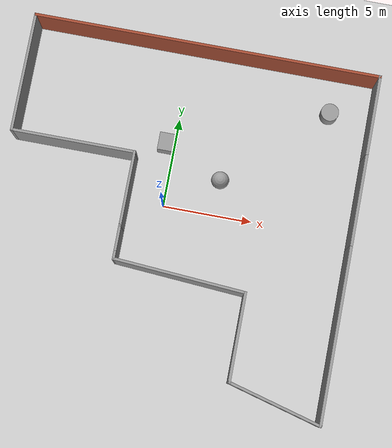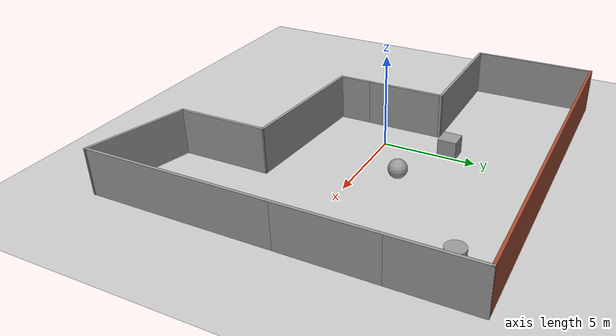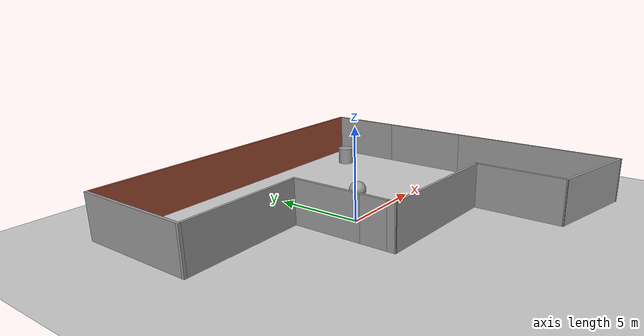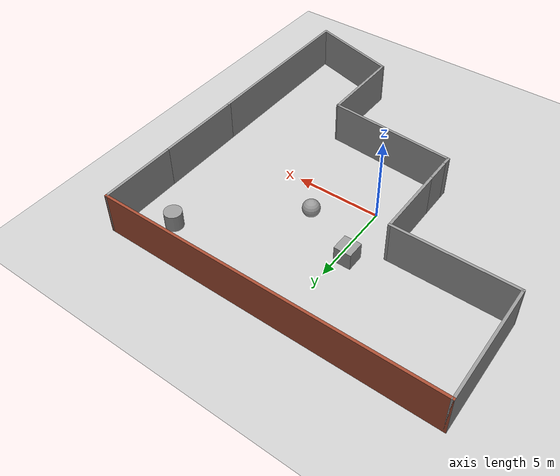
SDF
<sdf version="1.7">
 <world name="default">
  <light name="sun" type="directional">
   <pose>0 0 10 0 -0 0</pose>
   <diffuse>0.8 0.8 0.8 1</diffuse>
   <specular>0.2 0.2 0.2 1</specular>
   <attenuation>
    <range>1000</range>
    <constant>0.9</constant>
    <linear>0.01</linear>
    <quadratic>0.001</quadratic>
   </attenuation>
   <direction>-0.5 0.1 -0.9</direction>
   <spot><inner_angle>0</inner_angle><outer_angle>0</outer_angle><falloff>0</falloff></spot>
  </light>
  <model name="ground_plane">
   <static>1</static>
   <link name="link">
    <collision name="collision">
     <geometry><plane><normal>0 0 1</normal><size>100 100</size></plane></geometry>
     <surface>
      <contact><collide_bitmask>65535</collide_bitmask></contact>
      <friction><ode><mu>100</mu><mu2>50</mu2></ode></friction>
     </surface>
    </collision>
    <visual name="visual">
     <cast_shadows>0</cast_shadows>
     <geometry><plane><normal>0 0 1</normal><size>100 100</size></plane></geometry>
     <material>
      <script><uri>file://media/materials/scripts/gazebo.material</uri><name>Gazebo/Grey</name></script>
     </material>
    </visual>
   </link>
  </model>
  <gravity>0 0 -9.8</gravity>
  <magnetic_field>6e-06 2.3e-05 -4.2e-05</magnetic_field>
  <atmosphere type="adiabatic"/>
  <physics type="ode">
   <max_step_size>0.001</max_step_size>
   <real_time_factor>1</real_time_factor>
   <real_time_update_rate>1000</real_time_update_rate>
  </physics>
  <scene><ambient>0.4 0.4 0.4 1</ambient><background>0.7 0.7 0.7 1</background><shadows>1</shadows></scene>
  <spherical_coordinates>
   <surface_model>EARTH_WGS84</surface_model>
   <latitude_deg>0</latitude_deg>
   <longitude_deg>0</longitude_deg>
   <elevation>0</elevation>
   <heading_deg>0</heading_deg>
  </spherical_coordinates>
  <model name="wheel">
   <pose>0.843428 -0.748428 0 0 -0 0</pose>
   <link name="Wall_0">
    <collision name="Wall_0_Collision">
     <geometry><box><size>2 0.15 2.5</size></box></geometry>
     <pose>0 0 1.25 0 -0 0</pose>
    </collision>
    <visual name="Wall_0_Visual">
     <pose>0 0 1.25 0 -0 0</pose>
     <geometry><box><size>2 0.15 2.5</size></box></geometry>
     <material>
      <script><uri>file://media/materials/scripts/gazebo.material</uri><name>Gazebo/Grey</name></script>
      <ambient>1 1 1 1</ambient>
     </material>
     <meta><layer>0</layer></meta>
    </visual>
    <pose>-2.83343 -1.96657 0 0 -0 1.5708</pose>
   </link>
   <link name="Wall_1">
    <collision name="Wall_1_Collision">
     <geometry><box><size>4.25 0.15 2.5</size></box></geometry>
     <pose>0 0 1.25 0 -0 0</pose>
    </collision>
    <visual name="Wall_1_Visual">
     <pose>0 0 1.25 0 -0 0</pose>
     <geometry><box><size>4.25 0.15 2.5</size></box></geometry>
     <material>
      <script><uri>file://media/materials/scripts/gazebo.material</uri><name>Gazebo/Grey</name></script>
      <ambient>1 1 1 1</ambient>
     </material>
     <meta><layer>0</layer></meta>
    </visual>
    <pose>-2.83343 1.00843 0 0 -0 1.5708</pose>
   </link>
   <link name="Wall_10">
    <collision name="Wall_10_Collision">
     <geometry><box><size>7.5 0.15 2.5</size></box></geometry>
     <pose>0 0 1.25 0 -0 0</pose>
    </collision>
    <visual name="Wall_10_Visual">
     <pose>0 0 1.25 0 -0 0</pose>
     <geometry><box><size>7.5 0.15 2.5</size></box></geometry>
     <material>
      <script><uri>file://media/materials/scripts/gazebo.material</uri><name>Gazebo/Grey</name></script>
      <ambient>1 1 1 1</ambient>
     </material>
     <meta><layer>0</layer></meta>
    </visual>
    <pose>0.832721 -3.14923 0 0 -0 3.07143</pose>
   </link>
   <link name="Wall_11">
    <collision name="Wall_11_Collision">
     <geometry><box><size>0.5 0.15 2.5</size></box></geometry>
     <pose>0 0 1.25 0 -0 0</pose>
    </collision>
    <visual name="Wall_11_Visual">
     <pose>0 0 1.25 0 -0 0</pose>
     <geometry><box><size>0.5 0.15 2.5</size></box></geometry>
     <material>
      <script><uri>file://media/materials/scripts/gazebo.material</uri><name>Gazebo/Grey</name></script>
      <ambient>1 1 1 1</ambient>
     </material>
     <meta><layer>0</layer></meta>
    </visual>
    <pose>-2.83343 -2.71657 0 0 -0 1.5708</pose>
   </link>
   <link name="Wall_2">
    <collision name="Wall_2_Collision">
     <geometry><box><size>7 0.15 2.5</size></box></geometry>
     <pose>0 0 1.25 0 -0 0</pose>
    </collision>
    <visual name="Wall_2_Visual">
     <pose>0 0 1.25 0 -0 0</pose>
     <geometry><box><size>7 0.15 2.5</size></box></geometry>
     <material>
      <script><uri>file://media/materials/scripts/gazebo.material</uri><name>Gazebo/Grey</name></script>
      <ambient>1 1 1 1</ambient>
     </material>
     <meta><layer>0</layer></meta>
    </visual>
    <pose>-6.25843 3.05843 0 0 -0 3.14159</pose>
   </link>
   <link name="Wall_3">
    <collision name="Wall_3_Collision">
     <geometry><box><size>6.75 0.15 2.5</size></box></geometry>
     <pose>0 0 1.25 0 -0 0</pose>
    </collision>
    <visual name="Wall_3_Visual">
     <pose>0 0 1.25 0 -0 0</pose>
     <geometry><box><size>6.75 0.15 2.5</size></box></geometry>
     <material>
      <script><uri>file://media/materials/scripts/gazebo.material</uri><name>Gazebo/Grey</name></script>
      <ambient>1 1 1 1</ambient>
     </material>
     <meta><layer>0</layer></meta>
    </visual>
    <pose>-9.68343 6.35843 0 0 -0 1.5708</pose>
   </link>
   <link name="Wall_4">
    <collision name="Wall_4_Collision">
     <geometry><box><size>19.5 0.15 2.5</size></box></geometry>
     <pose>0 0 1.25 0 -0 0</pose>
    </collision>
    <visual name="Wall_4_Visual">
     <pose>0 0 1.25 0 -0 0</pose>
     <geometry><box><size>19.5 0.15 2.5</size></box></geometry>
     <material>
      <script><uri>file://media/materials/scripts/gazebo.material</uri><name>Gazebo/Bricks</name></script>
      <ambient>1 1 1 1</ambient>
     </material>
     <meta><layer>0</layer></meta>
    </visual>
    <pose>-0.008428 9.65843 0 0 -0 0</pose>
   </link>
   <link name="Wall_5">
    <collision name="Wall_5_Collision">
     <geometry><box><size>4.5 0.15 2.5</size></box></geometry>
     <pose>0 0 1.25 0 -0 0</pose>
    </collision>
    <visual name="Wall_5_Visual">
     <pose>0 0 1.25 0 -0 0</pose>
     <geometry><box><size>4.5 0.15 2.5</size></box></geometry>
     <material>
      <script><uri>file://media/materials/scripts/gazebo.material</uri><name>Gazebo/Grey</name></script>
      <ambient>1 1 1 1</ambient>
     </material>
     <meta><layer>0</layer></meta>
    </visual>
    <pose>9.66657 7.48343 0 0 -0 -1.5708</pose>
   </link>
   <link name="Wall_6">
    <collision name="Wall_6_Collision">
     <geometry><box><size>5.25 0.15 2.5</size></box></geometry>
     <pose>0 0 1.25 0 -0 0</pose>
    </collision>
    <visual name="Wall_6_Visual">
     <pose>0 0 1.25 0 -0 0</pose>
     <geometry><box><size>5.25 0.15 2.5</size></box></geometry>
     <material>
      <script><uri>file://media/materials/scripts/gazebo.material</uri><name>Gazebo/Grey</name></script>
      <ambient>1 1 1 1</ambient>
     </material>
     <meta><layer>0</layer></meta>
    </visual>
    <pose>9.66657 2.75843 0 0 -0 -1.5708</pose>
   </link>
   <link name="Wall_7">
    <collision name="Wall_7_Collision">
     <geometry><box><size>10 0.15 2.5</size></box></geometry>
     <pose>0 0 1.25 0 -0 0</pose>
    </collision>
    <visual name="Wall_7_Visual">
     <pose>0 0 1.25 0 -0 0</pose>
     <geometry><box><size>10 0.15 2.5</size></box></geometry>
     <material>
      <script><uri>file://media/materials/scripts/gazebo.material</uri><name>Gazebo/Grey</name></script>
      <ambient>1 1 1 1</ambient>
     </material>
     <meta><layer>0</layer></meta>
    </visual>
    <pose>9.66657 -4.71657 0 0 -0 -1.5708</pose>
   </link>
   <link name="Wall_8">
    <collision name="Wall_8_Collision">
     <geometry><box><size>5.5 0.15 2.5</size></box></geometry>
     <pose>0 0 1.25 0 -0 0</pose>
    </collision>
    <visual name="Wall_8_Visual">
     <pose>0 0 1.25 0 -0 0</pose>
     <geometry><box><size>5.5 0.15 2.5</size></box></geometry>
     <material>
      <script><uri>file://media/materials/scripts/gazebo.material</uri><name>Gazebo/Grey</name></script>
      <ambient>1 1 1 1</ambient>
     </material>
     <meta><layer>0</layer></meta>
    </visual>
    <pose>7.08272 -8.94923 0 0 -0 2.87979</pose>
   </link>
   <link name="Wall_9">
    <collision name="Wall_9_Collision">
     <geometry><box><size>5 0.15 2.5</size></box></geometry>
     <pose>0 0 1.25 0 -0 0</pose>
    </collision>
    <visual name="Wall_9_Visual">
     <pose>0 0 1.25 0 -0 0</pose>
     <geometry><box><size>5 0.15 2.5</size></box></geometry>
     <material>
      <script><uri>file://media/materials/scripts/gazebo.material</uri><name>Gazebo/Grey</name></script>
      <ambient>1 1 1 1</ambient>
     </material>
     <meta><layer>0</layer></meta>
    </visual>
    <pose>4.49887 -5.83189 0 0 -0 1.5708</pose>
   </link>
   <static>1</static>
  </model>
  <model name="unit_sphere">
   <pose>2.86879 1.95449 0.5 0 -0 0</pose>
   <link name="link">
    <inertial>
     <mass>1</mass>
     <inertia><ixx>0.1</ixx><ixy>0</ixy><ixz>0</ixz><iyy>0.1</iyy><iyz>0</iyz><izz>0.1</izz></inertia>
    </inertial>
    <collision name="collision"><geometry><sphere><radius>0.5</radius></sphere></geometry></collision>
    <visual name="visual">
     <geometry><sphere><radius>0.5</radius></sphere></geometry>
     <material>
      <script><name>Gazebo/Grey</name><uri>file://media/materials/scripts/gazebo.material</uri></script>
     </material>
    </visual>
   </link>
  </model>
  <model name="unit_cylinder">
   <pose>8.22479 6.79676 0.499993 -3e-06 -4e-06 -0</pose>
   <link name="link">
    <inertial>
     <mass>1</mass>
     <inertia><ixx>0.145833</ixx><ixy>0</ixy><ixz>0</ixz><iyy>0.145833</iyy><iyz>0</iyz><izz>0.125</izz></inertia>
    </inertial>
    <collision name="collision">
     <geometry><cylinder><radius>0.5</radius><length>1</length></cylinder></geometry>
    </collision>
    <visual name="visual">
     <geometry><cylinder><radius>0.5</radius><length>1</length></cylinder></geometry>
     <material>
      <script><name>Gazebo/Grey</name><uri>file://media/materials/scripts/gazebo.material</uri></script>
     </material>
    </visual>
   </link>
  </model>
  <model name="unit_box">
   <pose>-0.414562 3.47013 0.5 0 -0 0</pose>
   <link name="link">
    <inertial>
     <mass>1</mass>
     <inertia>
      <ixx>0.166667</ixx>
      <ixy>0</ixy>
      <ixz>0</ixz>
      <iyy>0.166667</iyy>
      <iyz>0</iyz>
      <izz>0.166667</izz>
     </inertia>
    </inertial>
    <collision name="collision"><geometry><box><size>1 1 1</size></box></geometry></collision>
    <visual name="visual">
     <geometry><box><size>1 1 1</size></box></geometry>
     <material>
      <script><name>Gazebo/Grey</name><uri>file://media/materials/scripts/gazebo.material</uri></script>
     </material>
    </visual>
   </link>
  </model>
 </world>
</sdf>
